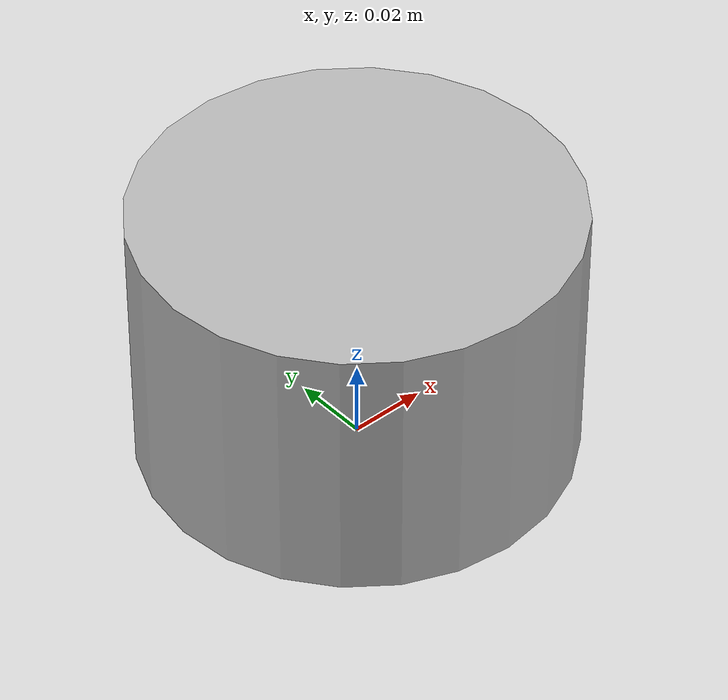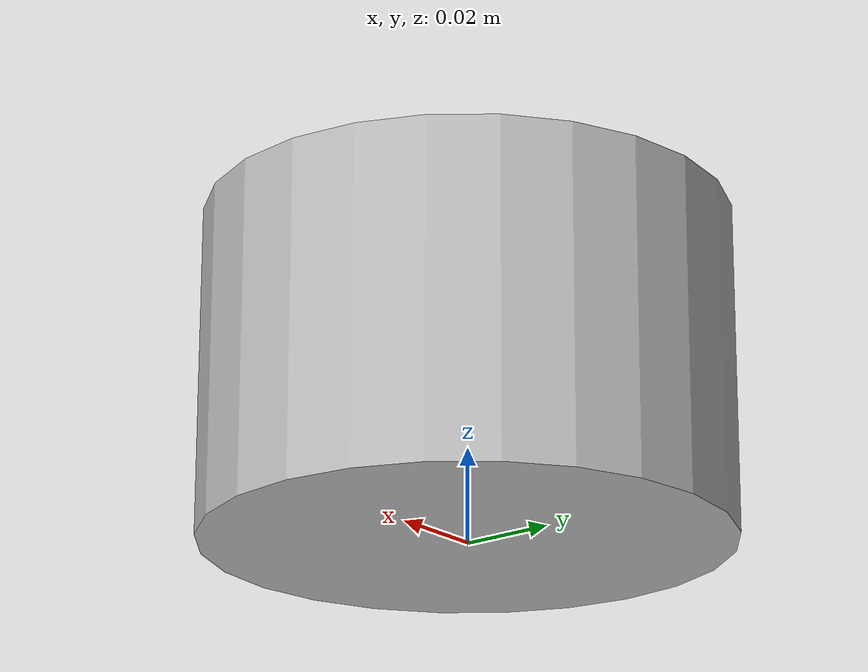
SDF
<?xml version="1.0" ?>
<sdf version="1.5">
  <model name="beer_i">
    <link name="link">
      <pose>0 0 0.035 0 0 0</pose>
      <inertial>
        <mass>0.390</mass>
        <inertia>
          <ixx>0.00058</ixx>
          <ixy>0</ixy>
          <ixz>0</ixz>
          <iyy>0.00058</iyy>
          <iyz>0</iyz>
          <izz>0.00019</izz>
        </inertia>
      </inertial>
      <collision name="collision">
        <geometry>
          <cylinder>
            <radius>0.055000</radius>
            <length>0.07000</length>
          </cylinder>
        </geometry>
      </collision>
      <visual name="visual">
        <geometry>
          <cylinder>
            <radius>0.055000</radius>
            <length>0.07000</length>
          </cylinder>
        </geometry>
        <material>
          <script>
            <uri>model://beer_i/materials/scripts</uri>
            <uri>model://beer_i/materials/textures</uri>
            <name>Beer_i/Diffuse</name>
          </script>
        </material>
      </visual>
    </link>
  </model>
</sdf>
